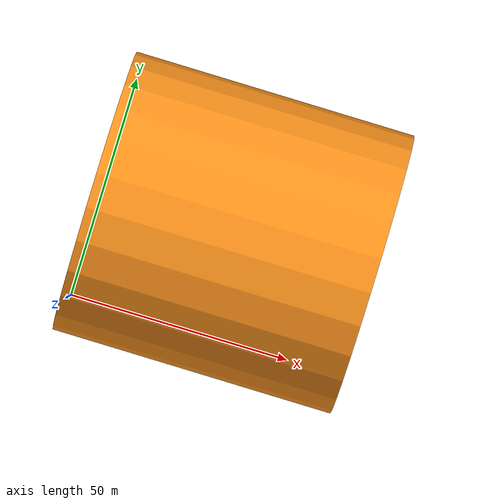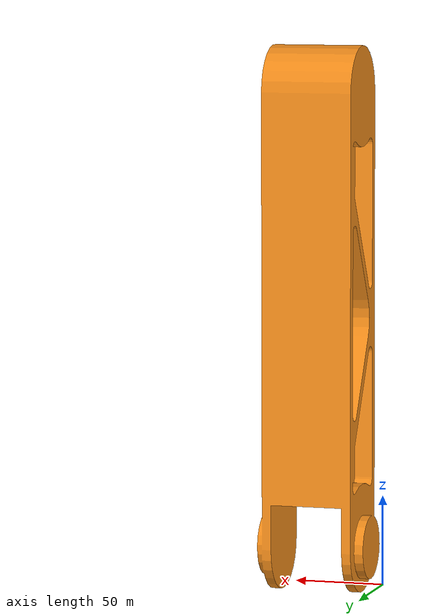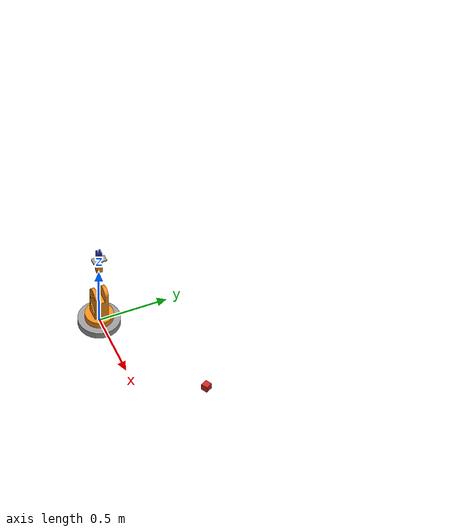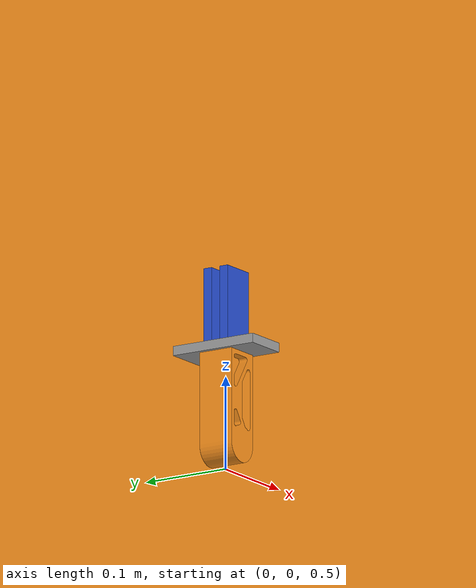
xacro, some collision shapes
<?xml version="1.0"?>

<robot name="mogi_arm" xmlns:xacro="http://www.ros.org/wiki/xacro">

  <!-- RViz colors -->
  <xacro:include filename="$(find bme_ros_simple_arm)/urdf/materials.xacro" />
  <!-- Transmisions -->
  <xacro:include filename="$(find bme_ros_simple_arm)/urdf/transmission.xacro" />
  <!-- Gazebo plugin -->
  <xacro:include filename="$(find bme_ros_simple_arm)/urdf/mogi_arm.gazebo" />

  <!-- Global reference link -->
  <link name="world"/>

  <joint name="fixed_base" type="fixed">
    <parent link="world"/>
    <child link="base_link"/>
  </joint>

  <!-- Arm base link -->
  <link name="base_link">
    <inertial>
      <mass value="2"/>
      <origin xyz="0.0 0.0 0.0"/>
      <inertia ixx="0.0117" ixy="0.0" ixz="0.0"
               iyy="0.0117" iyz="0.0"
               izz="0.0225"
      />
    </inertial>
    <collision>
      <geometry>
        <cylinder radius="0.15" length="0.05"/>
      </geometry>
      <origin xyz="0.0 0.0 0.0" rpy="0.0 0.0 0.0"/>
    </collision>
    <visual>
      <geometry>
        <cylinder radius="0.15" length="0.05"/>
      </geometry>
      <material name="grey"/>
      <origin xyz="0.0 0.0 0.0" rpy="0.0 0.0 0.0"/>
    </visual>
  </link>

  <gazebo reference="base_link">
    <material>Gazebo/Grey</material>
  </gazebo>

  <!-- Shoulder pan joint -->
  <joint name="shoulder_pan_joint" type="revolute">
    <limit lower="-3.14" upper="3.14" effort="330.0" velocity="3.14"/>
    <parent link="base_link"/>
    <child link="shoulder_link"/>
    <axis xyz="0 0 1"/>
    <origin xyz="0.0 0.0 0.05" rpy="0.0 0.0 0.0"/>
    <dynamics damping="0.0" friction="0.0"/>
  </joint>

  <!-- Shoulder link -->
  <link name="shoulder_link">
    <inertial>
      <mass value="0.5"/>
      <origin xyz="0.0 0.0 0.0" rpy="0.0 0.0 0.0"/>
      <inertia ixx="0.0014" ixy="0.0" ixz="0.0"
               iyy="0.0014" iyz="0.0"
               izz="0.0025"
      />
    </inertial>
    <collision>
      <geometry>
        <cylinder radius="0.1" length="0.05"/>
      </geometry>
      <origin xyz="0.0 0.0 0.0" rpy="0.0 0.0 0.0"/>
    </collision>
    <visual>
      <geometry>
        <mesh filename = "package://bme_ros_simple_arm/meshes/shoulder.dae"/>
        <!--cylinder radius="0.1" length="0.05"/-->
      </geometry>
      <material name="orange"/>
      <origin xyz="0.0 0.0 0.0" rpy="0.0 0.0 0.0"/>
    </visual>
  </link>

  <!-- Shoulder lift joint -->
  <joint name="shoulder_lift_joint" type="revolute">
    <limit lower="-1.5708" upper="1.5708" effort="330.0" velocity="3.14"/>
    <parent link="shoulder_link"/>
    <child link="upper_arm_link"/>
    <axis xyz="0 1 0"/>
    <origin xyz="0.0 0.0 0.025" rpy="0.0 0.0 0.0"/>
    <dynamics damping="0.0" friction="0.0"/>
  </joint>

  <!-- Upper arm link -->
  <link name="upper_arm_link">
    <inertial>
      <mass value="0.3"/>
      <origin xyz="0.0 0.0 0.1" rpy="0.0 0.0 0.0"/>
      <inertia ixx="0.0012" ixy="0.0" ixz="0.0"
               iyy="0.0012" iyz="0.0"
               izz="0.0004"
      />
    </inertial>
    <collision>
      <geometry>
        <cylinder radius="0.05" length="0.2"/>
      </geometry>
      <origin xyz="0.0 0.0 0.1" rpy="0.0 0.0 0.0"/>
    </collision>
    <visual>
      <geometry>
        <mesh filename = "package://bme_ros_simple_arm/meshes/upper_arm.dae"/>
        <!--cylinder radius="0.05" length="0.2"/-->
      </geometry>
      <material name="orange"/>
      <origin xyz="0.0 0.0 0.1" rpy="0.0 0.0 0.0"/>
    </visual>
  </link>

  <!-- Elbow joint -->
  <joint name="elbow_joint" type="revolute">
    <limit lower="-2.3562" upper="2.3562" effort="150.0" velocity="3.14"/>
    <parent link="upper_arm_link"/>
    <child link="forearm_link"/>
    <axis xyz="0 1 0"/>
    <origin xyz="0.0 0.0 0.2" rpy="0.0 0.0 0.0"/>
    <dynamics damping="0.0" friction="0.0"/>
  </joint>

  <!-- Forearm link -->
  <link name="forearm_link">
    <inertial>
      <mass value="0.2"/>
      <origin xyz="0.0 0.0 0.125" rpy="0.0 0.0 0.0"/>
      <inertia ixx="0.0011" ixy="0.0" ixz="0.0"
               iyy="0.0011" iyz="0.0"
               izz="0.0004"
      />
    </inertial>
    <collision>
      <geometry>
        <cylinder radius="0.025" length="0.25"/>
      </geometry>
      <origin xyz="0.0 0.0 0.125" rpy="0.0 0.0 0.0"/>
    </collision>
    <visual>
      <geometry>
        <mesh filename = "package://bme_ros_simple_arm/meshes/forearm.dae"/>
        <!--cylinder radius="0.025" length="0.25"/-->
      </geometry>
      <material name="orange"/>
      <origin xyz="0.0 0.0 0.125" rpy="0.0 0.0 0.0"/>
    </visual>
  </link>

  <!-- Wrist joint -->
  <joint name="wrist_joint" type="revolute">
    <limit lower="-2.3562" upper="2.3562" effort="54.0" velocity="3.14"/>
    <parent link="forearm_link"/>
    <child link="wrist_link"/>
    <axis xyz="0 1 0"/>
    <origin xyz="0.0 0.0 0.25" rpy="0.0 0.0 0.0"/>
    <dynamics damping="0.0" friction="0.0"/>
  </joint>

  <!-- Wrist link -->
  <link name="wrist_link">
    <inertial>
      <mass value="0.1"/>
      <origin xyz="0.0 0.0 0.05" rpy="0.0 0.0 0.0"/>
      <inertia ixx="0.00009" ixy="0.0" ixz="0.0"
               iyy="0.00009" iyz="0.0"
               izz="0.00002"
      />
    </inertial>
    <collision>
      <geometry>
        <cylinder radius="0.02" length="0.1"/>
      </geometry>
      <origin xyz="0.0 0.0 0.05" rpy="0.0 0.0 0.0"/>
    </collision>
    <visual>
      <geometry>
        <mesh filename = "package://bme_ros_simple_arm/meshes/wrist.dae"/>
        <!--cylinder radius="0.02" length="0.1"/-->
      </geometry>
      <material name="orange"/>
      <origin xyz="0.0 0.0 0.05" rpy="0.0 0.0 0.0"/>
    </visual>
  </link>

  <!-- Gripper base joint -->
  <joint name="gripper_base_joint" type="fixed">
    <parent link="wrist_link"/>
    <child link="gripper_base"/>
    <origin xyz="0.0 0 0.105" rpy="0.0 0 0"/>
  </joint>

  <!-- Gripper base link -->
  <link name="gripper_base">
    <inertial>
      <mass value="0.1"/>
      <origin xyz="0.0 0.0 0.0" rpy="0.0 0.0 0.0"/>
      <inertia ixx="0.00009" ixy="0.0" ixz="0.0"
               iyy="0.00009" iyz="0.0"
               izz="0.00002"
      />
    </inertial>
    <collision>
      <geometry>
        <box size=".05 .1 .01"/>
      </geometry>
      <origin xyz="0.0 0.0 0.0" rpy="0.0 0.0 0.0"/>
    </collision>
    <visual>
      <geometry>
        <box size=".05 .1 .01"/>
      </geometry>
      <material name="grey"/>
      <origin xyz="0.0 0.0 0.0" rpy="0.0 0.0 0.0"/>
    </visual>
  </link>

  <gazebo reference="gripper_base">
    <material>Gazebo/Grey</material>
  </gazebo>

  <!-- Left finger joint -->
  <joint name="left_finger_joint" type="prismatic">
    <limit lower="0" upper="0.04" effort="100.0" velocity="4.0"/>
    <parent link="gripper_base"/>
    <child link="left_finger"/>
    <axis xyz="0 1 0"/>
    <origin xyz="0.0 0.01 0.045" />
  </joint>

  <!-- Left finger link -->
  <link name="left_finger">
    <inertial>
      <mass value="0.1"/>
      <origin xyz="0.0 0.0 0.0" rpy="0.0 0.0 0.0"/>
      <inertia ixx="0.00009" ixy="0.0" ixz="0.0"
               iyy="0.00009" iyz="0.0"
               izz="0.00002"
      />
    </inertial>
    <collision>
      <geometry>
        <box size=".04 .01 .08"/>
      </geometry>
      <origin xyz="0.0 0.0 0.0" rpy="0.0 0.0 0.0"/>
    </collision>
    <visual>
      <geometry>
        <box size=".04 .01 .08"/>
      </geometry>
      <material name="blue"/>
      <origin xyz="0.0 0.0 0.0" rpy="0.0 0.0 0.0"/>
    </visual>
  </link>

  <gazebo reference="left_finger">
    <kp>1000000.0</kp>
    <kd>100.0</kd>
    <mu1>15</mu1>
    <mu2>15</mu2>
    <fdir1>1 0 0</fdir1>
    <maxVel>1.0</maxVel>
    <minDepth>0.002</minDepth>
    <material>Gazebo/Blue</material>
  </gazebo>

  <!-- Right finger joint -->
  <joint name="right_finger_joint" type="prismatic">
    <limit lower="0" upper="0.04" effort="100.0" velocity="4.0"/>
    <parent link="gripper_base"/>
    <child link="right_finger"/>
    <axis xyz="0 -1 0"/>
    <origin xyz="0.0 -0.01 0.045" />
  </joint>

  <!-- Right finger link -->
  <link name="right_finger">
    <inertial>
      <mass value="0.1"/>
      <origin xyz="0.0 0.0 0.0" rpy="0.0 0.0 0.0"/>
      <inertia ixx="0.00009" ixy="0.0" ixz="0.0"
               iyy="0.00009" iyz="0.0"
               izz="0.00002"
      />
    </inertial>
    <collision>
      <geometry>
        <box size=".04 .01 .08"/>
      </geometry>
      <origin xyz="0.0 0.0 0.0" rpy="0.0 0.0 0.0"/>
    </collision>
    <visual>
      <geometry>
        <box size=".04 .01 .08"/>
      </geometry>
      <material name="blue"/>
      <origin xyz="0.0 0.0 0.0" rpy="0.0 0.0 0.0"/>
    </visual>
  </link>

  <gazebo reference="right_finger">
    <kp>1000000.0</kp>
    <kd>100.0</kd>
    <mu1>15</mu1>
    <mu2>15</mu2>
    <fdir1>1 0 0</fdir1>
    <maxVel>1.0</maxVel>
    <minDepth>0.002</minDepth>
    <material>Gazebo/Blue</material>
  </gazebo>

  <!-- Virtual roll joint -->
  <joint name="virtual_roll_joint" type="revolute">
    <limit lower="-3.1415" upper="3.1415" effort="54.0" velocity="3.14"/>
    <parent link="wrist_link"/>
    <child link="virtual_roll_link"/>
    <axis xyz="0 0 1"/>
    <origin xyz="0.0 0.0 0.175" rpy="0 0 0"/>
    <dynamics damping="0.0" friction="0.0"/>
  </joint>

  <!-- Virtual roll link -->
  <link name="virtual_roll_link">
    <visual>
      <origin xyz="0 0 0" rpy="0 0 0"/>
      <geometry>
        <box size="0.01 0.01 0.01" />
      </geometry>
      <material name="red"/>
     </visual>

    <inertial>
      <origin xyz="0 0 0" />
      <mass value="1.0e-03" />
      <inertia ixx="1.0e-03" ixy="0.0" ixz="0.0"
               iyy="1.0e-03" iyz="0.0"
               izz="1.0e-03" />
    </inertial>
  </link>

  <gazebo reference="virtual_roll_link">
    <material>Gazebo/Red</material>
  </gazebo>

  <!-- Virtual yaw joint -->
  <joint name="virtual_yaw_joint" type="revolute">
    <limit lower="-3.1415" upper="3.1415" effort="54.0" velocity="3.14"/>
    <parent link="virtual_roll_link"/>
    <child link="virtual_yaw_link"/>
    <axis xyz="1 0 0"/>
    <origin xyz="0.0 0.0 0.0" rpy="0 0 0"/>
    <dynamics damping="0.0" friction="0.0"/>
  </joint>

  <!-- Virtual yaw link -->
  <link name="virtual_yaw_link">
    <visual>
      <origin xyz="0 0 0" rpy="0 0 0"/>
      <geometry>
        <box size="0.01 0.01 0.01" />
      </geometry>
      <material name="red"/>
     </visual>

    <inertial>
      <origin xyz="0 0 0" />
      <mass value="1.0e-03" />
      <inertia ixx="1.0e-03" ixy="0.0" ixz="0.0"
               iyy="1.0e-03" iyz="0.0"
               izz="1.0e-03" />
    </inertial>
  </link>

  <gazebo reference="virtual_yaw_link">
    <material>Gazebo/Red</material>
  </gazebo>

  <!-- End effector joint -->
  <joint name="end_effector_joint" type="fixed">
    <origin xyz="0.0 0.0 0.0" rpy="0 0 0"/>
    <parent link="virtual_yaw_link"/>
    <child link="end_effector_link"/>
  </joint>

  <!-- End effector link -->
  <link name="end_effector_link">
    <visual>
      <origin xyz="0 0 0" rpy="0 0 0"/>
      <geometry>
        <box size="0.01 0.01 0.01" />
      </geometry>
      <material name="red"/>
     </visual>

    <inertial>
      <origin xyz="0 0 0" />
      <mass value="1.0e-03" />
      <inertia ixx="1.0e-03" ixy="0.0" ixz="0.0"
               iyy="1.0e-03" iyz="0.0"
               izz="1.0e-03" />
    </inertial>
  </link>

  <gazebo reference="end_effector_link">
    <material>Gazebo/Red</material>
  </gazebo>

  <!-- Gripper camera -->
  <joint type="fixed" name="gripper_camera_joint">
    <origin xyz="0.0 0.0 0.0" rpy="0 -1.5707 0"/>
    <child link="gripper_camera_link"/>
    <parent link="gripper_base"/>
  </joint>

  <link name='gripper_camera_link'>
    <pose>0 0 0 0 0 0</pose>
    <inertial>
      <mass value="1.0e-03"/>
      <origin xyz="0 0 0" rpy="0 0 0"/>
      <inertia
          ixx="1e-6" ixy="0" ixz="0"
          iyy="1e-6" iyz="0"
          izz="1e-6"
      />
    </inertial>

    <visual>
      <origin xyz="0 0 0" rpy="0 0 0"/>
      <geometry>
        <box size=".01 .01 .01"/>
      </geometry>
    </visual>

  </link>

  <gazebo reference="gripper_camera_link">
    <material>Gazebo/Red</material>
  </gazebo>

  <joint type="fixed" name="gripper_camera_optical_joint">
    <origin xyz="0 0 0" rpy="-1.5707 0 -1.5707"/>
    <child link="gripper_camera_link_optical"/>
    <parent link="gripper_camera_link"/>
  </joint>

  <link name="gripper_camera_link_optical">
  </link>

  <!-- Table camera -->
  <joint type="fixed" name="table_camera_joint">
    <origin xyz="1.0 0.4 0.2" rpy="0 0 3.6652"/>
    <child link="table_camera_link"/>
    <parent link="world"/>
  </joint>

  <link name='table_camera_link'>
    <pose>0 0 0 0 0 0</pose>
    <inertial>
      <mass value="1.0e-03"/>
      <origin xyz="0 0 0" rpy="0 0 0"/>
      <inertia
          ixx="1e-6" ixy="0" ixz="0"
          iyy="1e-6" iyz="0"
          izz="1e-6"
      />
    </inertial>

    <visual>
      <origin xyz="0 0 0" rpy="0 0 0"/>
      <geometry>
        <box size=".05 .05 .05"/>
      </geometry>
    </visual>

  </link>

  <gazebo reference="table_camera_link">
    <material>Gazebo/Red</material>
  </gazebo>

  <joint type="fixed" name="table_camera_optical_joint">
    <origin xyz="0 0 0" rpy="-1.5707 0 -1.5707"/>
    <child link="table_camera_link_optical"/>
    <parent link="table_camera_link"/>
  </joint>

  <link name="table_camera_link_optical">
  </link>

</robot>
